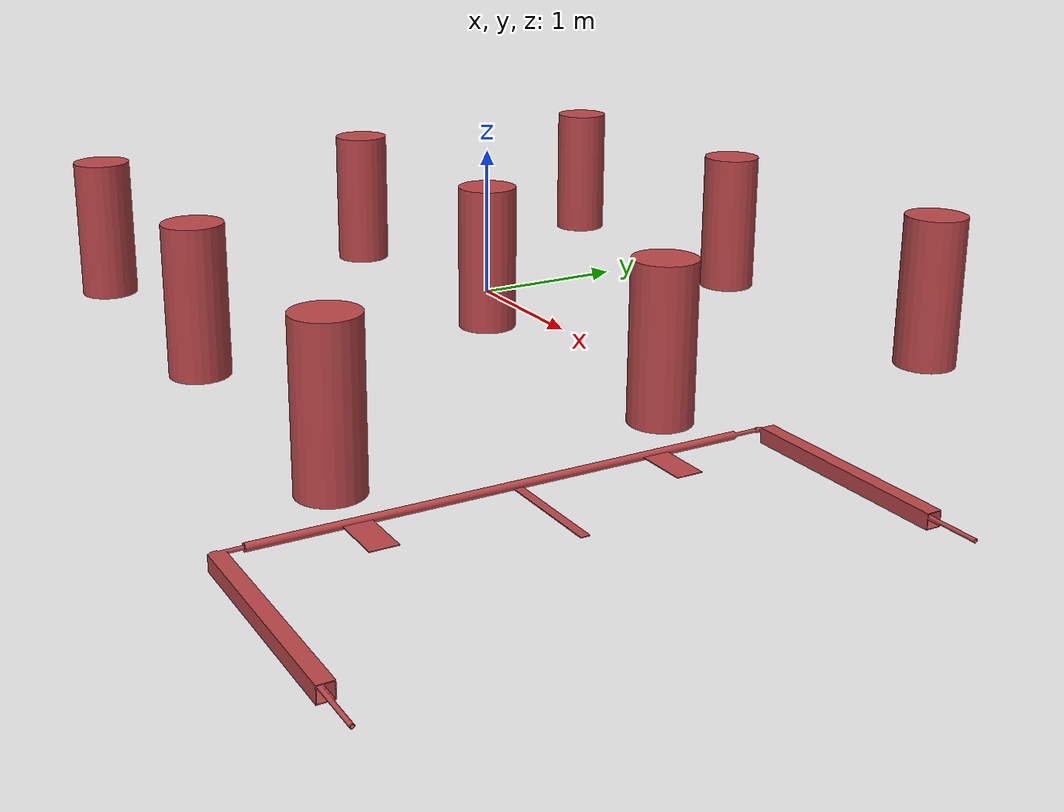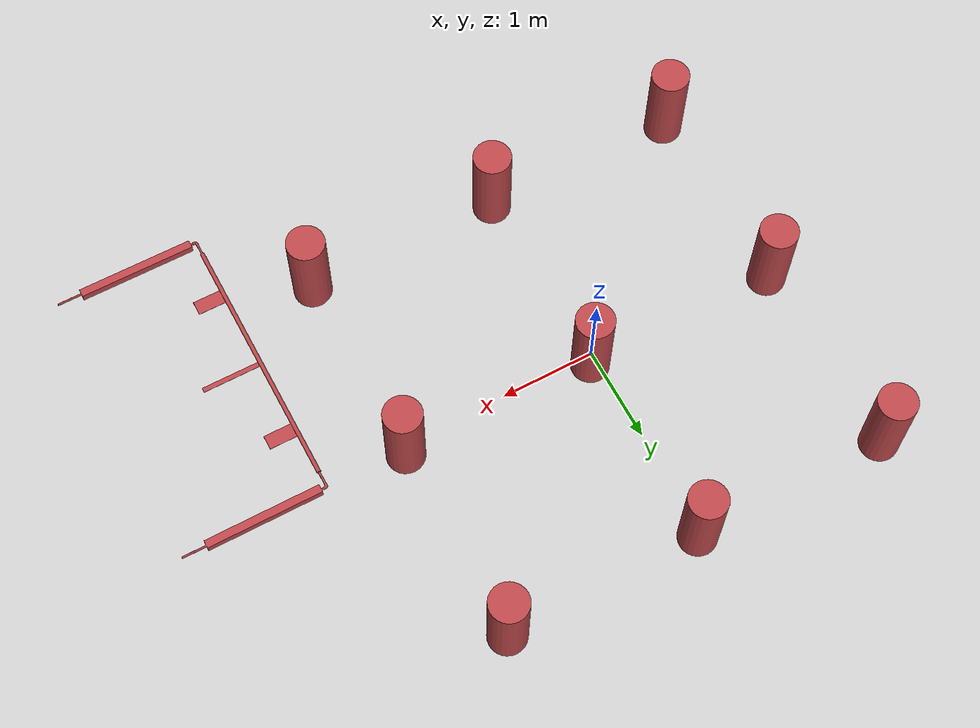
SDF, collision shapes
<sdf version='1.5'>
    <model name='ros_symbol'>
      <static>1</static>
      <link name='symbol'>
        <collision name='one_one'>
          <pose>-2.1 -2.1 0.25 0 0 0</pose>
          <geometry>
            <cylinder>
              <radius>0.20</radius>
              <length>1.0</length>
            </cylinder>
          </geometry>
          <max_contacts>10</max_contacts>
          <surface>
            <bounce/>
            <friction>
              <ode/>
            </friction>
            <contact>
              <ode/>
            </contact>
          </surface>
        </collision>

        <visual name='one_one'>
          <pose>-2.1 -2.1 0.25 0 0 0</pose>
          <geometry>
            <cylinder>
              <radius>0.20</radius>
              <length>1.0</length>
            </cylinder>
          </geometry>
          <material>
            <ambient>.74 .28 .29 1</ambient>
            <diffuse>.74 .28 .29 1</diffuse>
            <specular>1 1 1 1</specular>
          </material>
        </visual>

        <collision name='one_two'>
          <pose>-2.1 0 0.25 0 0 0</pose>
          <geometry>
            <cylinder>
              <radius>0.20</radius>
              <length>1.0</length>
            </cylinder>
          </geometry>
          <max_contacts>10</max_contacts>
          <surface>
            <bounce/>
            <friction>
              <ode/>
            </friction>
            <contact>
              <ode/>
            </contact>
          </surface>
        </collision>

        <visual name='one_two'>
          <pose>-2.1 0 0.25 0 0 0</pose>
          <geometry>
            <cylinder>
              <radius>0.20</radius>
              <length>1.0</length>
            </cylinder>
          </geometry>
          <material>
            <ambient>.74 .28 .29 1</ambient>
            <diffuse>.74 .28 .29 1</diffuse>
            <specular>1 1 1 1</specular>
          </material>
        </visual>

        <collision name='one_three'>
          <pose>-2.1 2.1 0.25 0 0 0</pose>
          <geometry>
            <cylinder>
              <radius>0.20</radius>
              <length>1.0</length>
            </cylinder>
          </geometry>
          <max_contacts>10</max_contacts>
          <surface>
            <bounce/>
            <friction>
              <ode/>
            </friction>
            <contact>
              <ode/>
            </contact>
          </surface>
        </collision>

        <visual name='one_three'>
          <pose>-2.1 2.1 0.25 0 0 0</pose>
          <geometry>
            <cylinder>
              <radius>0.20</radius>
              <length>1.0</length>
            </cylinder>
          </geometry>
          <material>
            <ambient>.74 .28 .29 1</ambient>
            <diffuse>.74 .28 .29 1</diffuse>
            <specular>1 1 1 1</specular>
          </material>
        </visual>

        <collision name='two_one'>
          <pose>0 -2.1 0.25 0 0 0</pose>
          <geometry>
            <cylinder>
              <radius>0.20</radius>
              <length>1.0</length>
            </cylinder>
          </geometry>
          <max_contacts>10</max_contacts>
          <surface>
            <bounce/>
            <friction>
              <ode/>
            </friction>
            <contact>
              <ode/>
            </contact>
          </surface>
        </collision>

        <visual name='two_one'>
          <pose>0 -2.1 0.25 0 0 0</pose>
          <geometry>
            <cylinder>
              <radius>0.20</radius>
              <length>1.0</length>
            </cylinder>
          </geometry>
          <material>
            <ambient>.74 .28 .29 1</ambient>
            <diffuse>.74 .28 .29 1</diffuse>
            <specular>1 1 1 1</specular>
          </material>
        </visual>

        <collision name='two_two'>
          <pose>0 0 0.25 0 0 0</pose>
          <geometry>
            <cylinder>
              <radius>0.20</radius>
              <length>1.0</length>
            </cylinder>
          </geometry>
          <max_contacts>10</max_contacts>
          <surface>
            <bounce/>
            <friction>
              <ode/>
            </friction>
            <contact>
              <ode/>
            </contact>
          </surface>
        </collision>

        <visual name='two_two'>
          <pose>0 0 0.25 0 0 0</pose>
          <geometry>
            <cylinder>
              <radius>0.20</radius>
              <length>1.0</length>
            </cylinder>
          </geometry>
          <material>
            <ambient>.74 .28 .29 1</ambient>
            <diffuse>.74 .28 .29 1</diffuse>
            <specular>1 1 1 1</specular>
          </material>
        </visual>

        <collision name='two_three'>
          <pose>0 2.1 0.25 0 0 0</pose>
          <geometry>
            <cylinder>
              <radius>0.20</radius>
              <length>1.0</length>
            </cylinder>
          </geometry>
          <max_contacts>10</max_contacts>
          <surface>
            <bounce/>
            <friction>
              <ode/>
            </friction>
            <contact>
              <ode/>
            </contact>
          </surface>
        </collision>

        <visual name='two_three'>
          <pose>0 2.1 0.25 0 0 0</pose>
          <geometry>
            <cylinder>
              <radius>0.20</radius>
              <length>1.0</length>
            </cylinder>
          </geometry>
          <material>
            <ambient>.74 .28 .29 1</ambient>
            <diffuse>.74 .28 .29 1</diffuse>
            <specular>1 1 1 1</specular>
          </material>
        </visual>

        <collision name='three_one'>
          <pose>2.1 -2.1 0.25 0 0 0</pose>
          <geometry>
            <cylinder>
              <radius>0.20</radius>
              <length>1.0</length>
            </cylinder>
          </geometry>
          <max_contacts>10</max_contacts>
          <surface>
            <bounce/>
            <friction>
              <ode/>
            </friction>
            <contact>
              <ode/>
            </contact>
          </surface>
        </collision>

        <visual name='three_one'>
          <pose>2.1 -2.1 0.25 0 0 0</pose>
          <geometry>
            <cylinder>
              <radius>0.20</radius>
              <length>1.0</length>
            </cylinder>
          </geometry>
          <material>
            <ambient>.74 .28 .29 1</ambient>
            <diffuse>.74 .28 .29 1</diffuse>
            <specular>1 1 1 1</specular>
          </material>
        </visual>

        <collision name='three_two'>
          <pose>2.1 0 0.25 0 0 0</pose>
          <geometry>
            <cylinder>
              <radius>0.20</radius>
              <length>1.0</length>
            </cylinder>
          </geometry>
          <max_contacts>10</max_contacts>
          <surface>
            <bounce/>
            <friction>
              <ode/>
            </friction>
            <contact>
              <ode/>
            </contact>
          </surface>
        </collision>

        <visual name='three_two'>
          <pose>2.1 0 0.25 0 0 0</pose>
          <geometry>
            <cylinder>
              <radius>0.20</radius>
              <length>1.0</length>
            </cylinder>
          </geometry>
          <material>
            <ambient>.74 .28 .29 1</ambient>
            <diffuse>.74 .28 .29 1</diffuse>
            <specular>1 1 1 1</specular>
          </material>
        </visual>

        <collision name='three_three'>
          <pose>2.1 2.1 0.25 0 0 0</pose>
          <geometry>
            <cylinder>
              <radius>0.20</radius>
              <length>1.0</length>
            </cylinder>
          </geometry>
          <max_contacts>10</max_contacts>
          <surface>
            <bounce/>
            <friction>
              <ode/>
            </friction>
            <contact>
              <ode/>
            </contact>
          </surface>
        </collision>

        <visual name='three_three'>
          <pose>2.1 2.1 0.25 0 0 0</pose>
          <geometry>
            <cylinder>
              <radius>0.20</radius>
              <length>1.0</length>
            </cylinder>
          </geometry>
          <material>
            <ambient>.74 .28 .29 1</ambient>
            <diffuse>.74 .28 .29 1</diffuse>
            <specular>1 1 1 1</specular>
          </material>
        </visual>

        <visual name='body'>
            <pose>0 0 -0.3 0 0 -1.5708</pose>
            <geometry>
            <mesh>
                <uri>model://simulation/models/TurtlebotArena/meshes/wall.dae</uri>
                <scale>0.45 0.45 0.25</scale>
            </mesh>
            </geometry>
            <material>
                <ambient>0.65 0.78 0.34 1</ambient>
                <diffuse>0.65 0.78 0.34 1</diffuse>
                <specular>1 1 1 1</specular>
            </material>
        </visual>

        <collision name='gate'>
          <pose>3.0 0 0 0 0 1.57</pose>
          <geometry>
            <mesh>
              <uri>model://simulation/models/TurtlebotArena/meshes/Gate.dae</uri>
              <scale>1.0 1.0 1.0</scale>
            </mesh>
          </geometry>
          <max_contacts>10</max_contacts>
          <surface>
            <bounce/>
            <friction>
              <ode/>
            </friction>
            <contact>
              <ode/>
            </contact>
          </surface>
        </collision>

        <visual name='gate_visual'>
          <pose>3.0 0 0 0 0 1.57</pose>
          <geometry>
            <mesh>
              <uri>model://simulation/models/TurtlebotArena/meshes/Gate.dae</uri>
              <scale>1.0 1.0 1.0</scale>
            </mesh>
          </geometry>
          <material>
            <ambient>0.8 0.2 0.2 1</ambient>
            <diffuse>0.8 0.2 0.2 1</diffuse>
            <specular>1 1 1 1</specular>
          </material>
        </visual>

      </link>
    </model>
</sdf>
